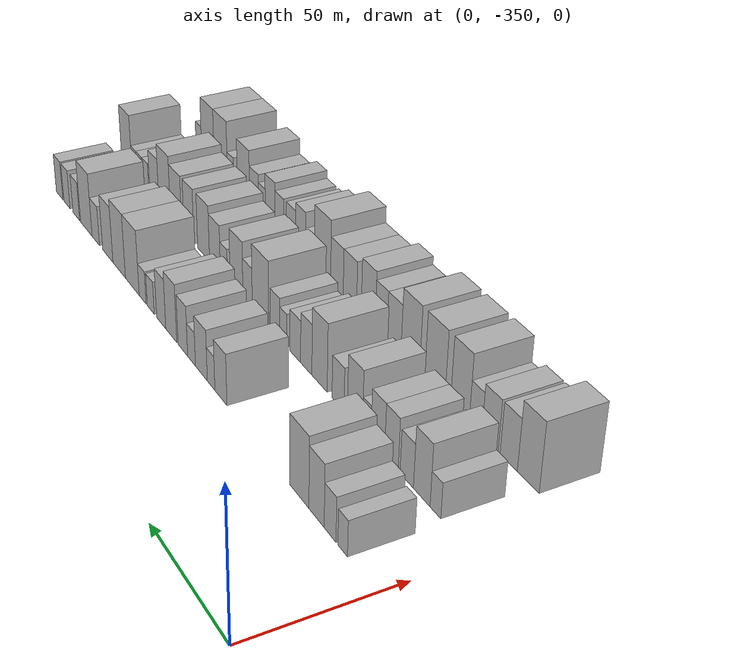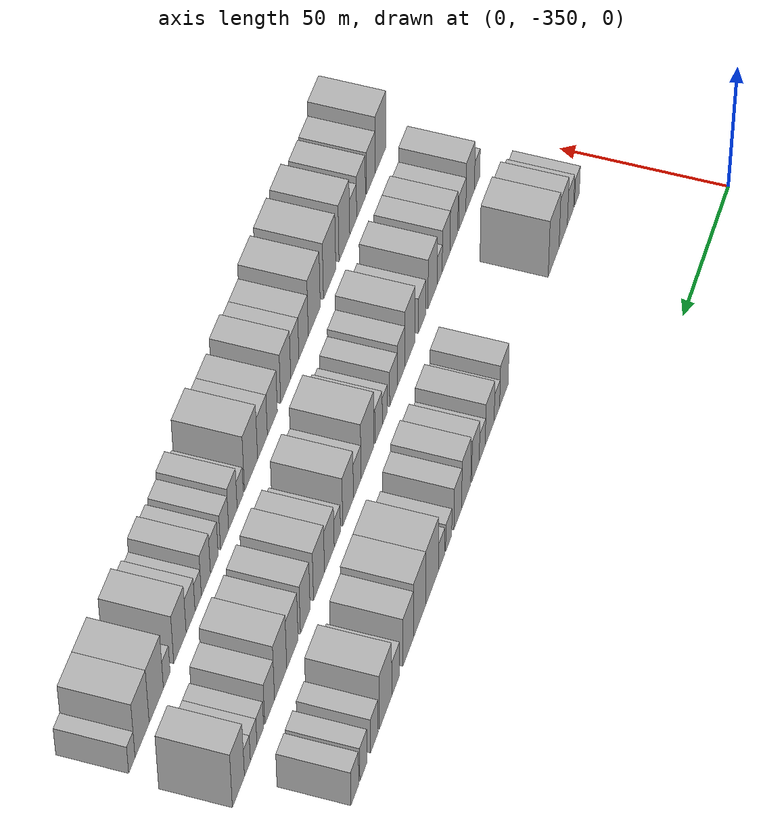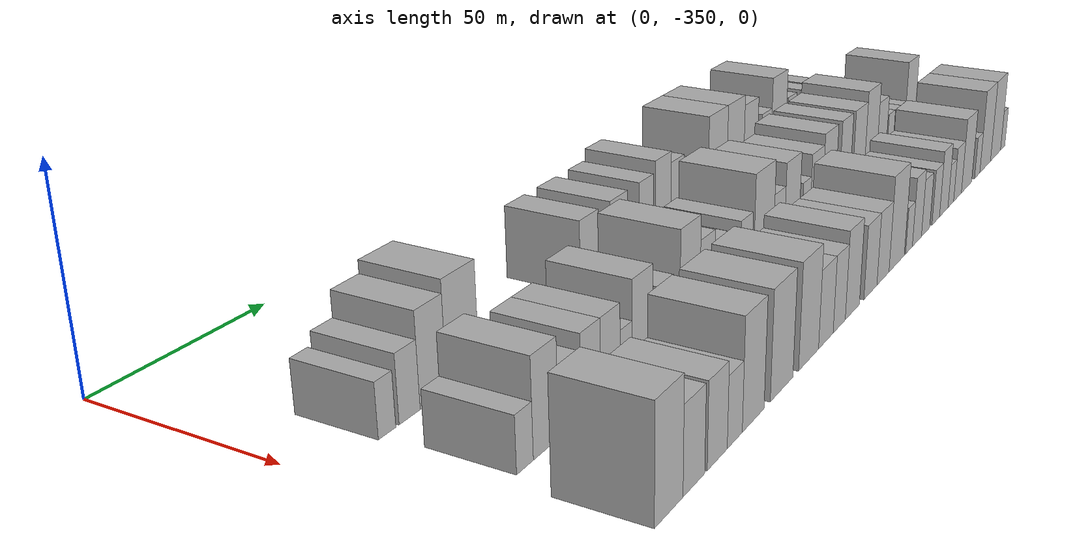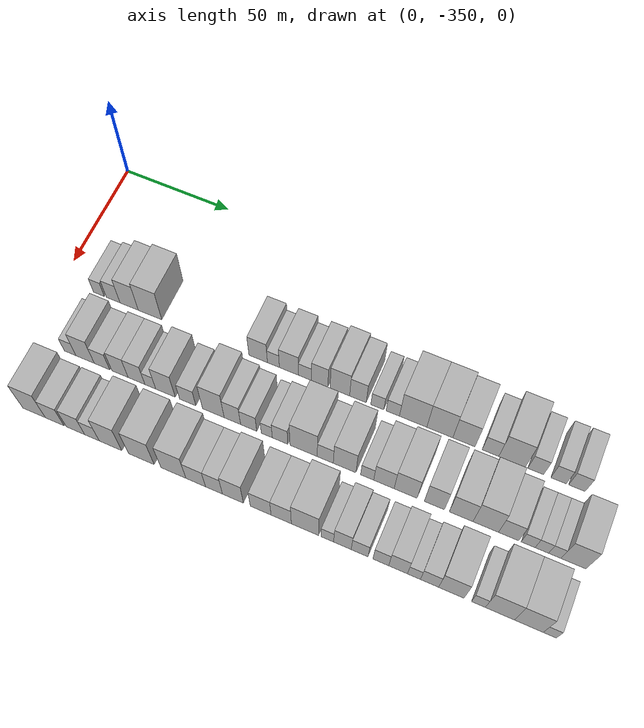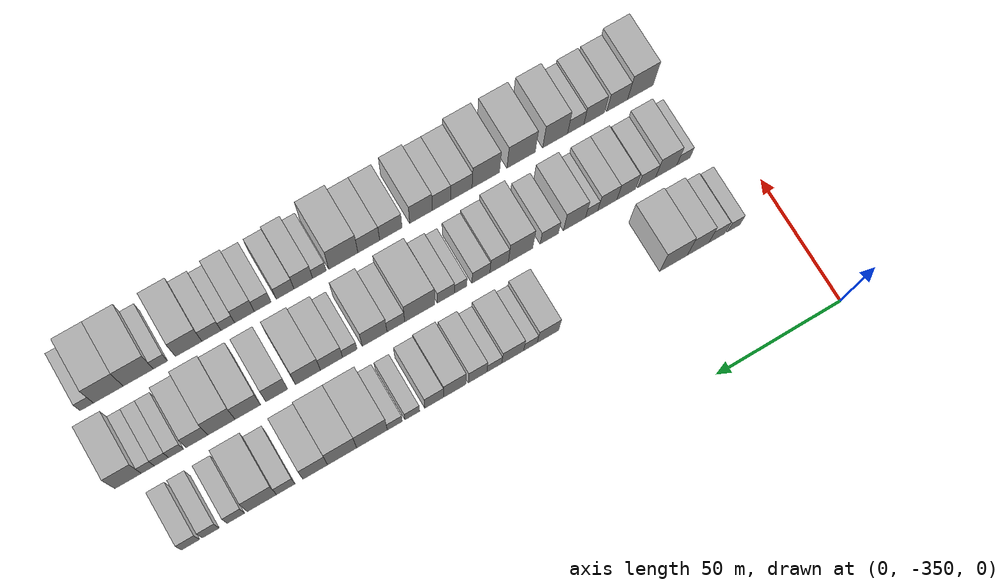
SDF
<sdf version="1.6">
 <world name="default">
  <model name="building_1">
   <static>1</static>
   <pose>50.0000 -332.4038 0 0.000000 0.000000 0.000000</pose>
   <link name="link">
    <pose>0 0 6.00 0 0 0</pose>
    <collision name="collision"><geometry><box><size>20.0000 5.1924 12.0000</size></box></geometry></collision>
    <visual name="visual">
     <cast_shadows>0</cast_shadows>
     <geometry><box><size>20.0000 5.1924 12.0000</size></box></geometry>
     <material>
      <script>
       <uri>model://HANNAS_wall/materials/scripts</uri>
       <uri>model://HANNAS_wall/materials/textures</uri>
       <name>vrc/HANNAS_wall</name>
      </script>
     </material>
    </visual>
   </link>
  </model>
  <model name="building_2">
   <static>1</static>
   <pose>50.0000 -325.5463 0 0.000000 0.000000 0.000000</pose>
   <link name="link">
    <pose>0 0 7.50 0 0 0</pose>
    <collision name="collision"><geometry><box><size>20.0000 6.5226 15.0000</size></box></geometry></collision>
    <visual name="visual">
     <cast_shadows>0</cast_shadows>
     <geometry><box><size>20.0000 6.5226 15.0000</size></box></geometry>
     <material>
      <script>
       <uri>model://HANNAS_wall/materials/scripts</uri>
       <uri>model://HANNAS_wall/materials/textures</uri>
       <name>vrc/HANNAS_wall</name>
      </script>
     </material>
    </visual>
   </link>
  </model>
  <model name="building_3">
   <static>1</static>
   <pose>50.0000 -317.9399 0 0.000000 0.000000 0.000000</pose>
   <link name="link">
    <pose>0 0 10.50 0 0 0</pose>
    <collision name="collision"><geometry><box><size>20.0000 8.6902 21.0000</size></box></geometry></collision>
    <visual name="visual">
     <cast_shadows>0</cast_shadows>
     <geometry><box><size>20.0000 8.6902 21.0000</size></box></geometry>
     <material>
      <script>
       <uri>model://HANNAS_wall/materials/scripts</uri>
       <uri>model://HANNAS_wall/materials/textures</uri>
       <name>vrc/HANNAS_wall</name>
      </script>
     </material>
    </visual>
   </link>
  </model>
  <model name="building_4">
   <static>1</static>
   <pose>50.0000 -308.0300 0 0.000000 0.000000 0.000000</pose>
   <link name="link">
    <pose>0 0 12.00 0 0 0</pose>
    <collision name="collision"><geometry><box><size>20.0000 11.1295 24.0000</size></box></geometry></collision>
    <visual name="visual">
     <cast_shadows>0</cast_shadows>
     <geometry><box><size>20.0000 11.1295 24.0000</size></box></geometry>
     <material>
      <script>
       <uri>model://HANNAS_wall/materials/scripts</uri>
       <uri>model://HANNAS_wall/materials/textures</uri>
       <name>vrc/HANNAS_wall</name>
      </script>
     </material>
    </visual>
   </link>
  </model>
  <model name="building_5">
   <static>1</static>
   <pose>50.0000 -257.8052 0 0.000000 0.000000 0.000000</pose>
   <link name="link">
    <pose>0 0 9.00 0 0 0</pose>
    <collision name="collision"><geometry><box><size>20.0000 8.4401 18.0000</size></box></geometry></collision>
    <visual name="visual">
     <cast_shadows>0</cast_shadows>
     <geometry><box><size>20.0000 8.4401 18.0000</size></box></geometry>
     <material>
      <script>
       <uri>model://HANNAS_wall/materials/scripts</uri>
       <uri>model://HANNAS_wall/materials/textures</uri>
       <name>vrc/HANNAS_wall</name>
      </script>
     </material>
    </visual>
   </link>
  </model>
  <model name="building_6">
   <static>1</static>
   <pose>50.0000 -250.8896 0 0.000000 0.000000 0.000000</pose>
   <link name="link">
    <pose>0 0 6.00 0 0 0</pose>
    <collision name="collision"><geometry><box><size>20.0000 5.3911 12.0000</size></box></geometry></collision>
    <visual name="visual">
     <cast_shadows>0</cast_shadows>
     <geometry><box><size>20.0000 5.3911 12.0000</size></box></geometry>
     <material>
      <script>
       <uri>model://HANNAS_wall/materials/scripts</uri>
       <uri>model://HANNAS_wall/materials/textures</uri>
       <name>vrc/HANNAS_wall</name>
      </script>
     </material>
    </visual>
   </link>
  </model>
  <model name="building_7">
   <static>1</static>
   <pose>50.0000 -243.8763 0 0.000000 0.000000 0.000000</pose>
   <link name="link">
    <pose>0 0 9.00 0 0 0</pose>
    <collision name="collision"><geometry><box><size>20.0000 8.6356 18.0000</size></box></geometry></collision>
    <visual name="visual">
     <cast_shadows>0</cast_shadows>
     <geometry><box><size>20.0000 8.6356 18.0000</size></box></geometry>
     <material>
      <script>
       <uri>model://HANNAS_wall/materials/scripts</uri>
       <uri>model://HANNAS_wall/materials/textures</uri>
       <name>vrc/HANNAS_wall</name>
      </script>
     </material>
    </visual>
   </link>
  </model>
  <model name="building_8">
   <static>1</static>
   <pose>50.0000 -236.6491 0 0.000000 0.000000 0.000000</pose>
   <link name="link">
    <pose>0 0 6.00 0 0 0</pose>
    <collision name="collision"><geometry><box><size>20.0000 5.8187 12.0000</size></box></geometry></collision>
    <visual name="visual">
     <cast_shadows>0</cast_shadows>
     <geometry><box><size>20.0000 5.8187 12.0000</size></box></geometry>
     <material>
      <script>
       <uri>model://HANNAS_wall/materials/scripts</uri>
       <uri>model://HANNAS_wall/materials/textures</uri>
       <name>vrc/HANNAS_wall</name>
      </script>
     </material>
    </visual>
   </link>
  </model>
  <model name="building_9">
   <static>1</static>
   <pose>50.0000 -230.1045 0 0.000000 0.000000 0.000000</pose>
   <link name="link">
    <pose>0 0 9.00 0 0 0</pose>
    <collision name="collision"><geometry><box><size>20.0000 7.2705 18.0000</size></box></geometry></collision>
    <visual name="visual">
     <cast_shadows>0</cast_shadows>
     <geometry><box><size>20.0000 7.2705 18.0000</size></box></geometry>
     <material>
      <script>
       <uri>model://HANNAS_wall/materials/scripts</uri>
       <uri>model://HANNAS_wall/materials/textures</uri>
       <name>vrc/HANNAS_wall</name>
      </script>
     </material>
    </visual>
   </link>
  </model>
  <model name="building_10">
   <static>1</static>
   <pose>50.0000 -221.1485 0 0.000000 0.000000 0.000000</pose>
   <link name="link">
    <pose>0 0 10.50 0 0 0</pose>
    <collision name="collision"><geometry><box><size>20.0000 8.6415 21.0000</size></box></geometry></collision>
    <visual name="visual">
     <cast_shadows>0</cast_shadows>
     <geometry><box><size>20.0000 8.6415 21.0000</size></box></geometry>
     <material>
      <script>
       <uri>model://HANNAS_wall/materials/scripts</uri>
       <uri>model://HANNAS_wall/materials/textures</uri>
       <name>vrc/HANNAS_wall</name>
      </script>
     </material>
    </visual>
   </link>
  </model>
  <model name="building_11">
   <static>1</static>
   <pose>50.0000 -213.1684 0 0.000000 0.000000 0.000000</pose>
   <link name="link">
    <pose>0 0 9.00 0 0 0</pose>
    <collision name="collision"><geometry><box><size>20.0000 7.3188 18.0000</size></box></geometry></collision>
    <visual name="visual">
     <cast_shadows>0</cast_shadows>
     <geometry><box><size>20.0000 7.3188 18.0000</size></box></geometry>
     <material>
      <script>
       <uri>model://HANNAS_wall/materials/scripts</uri>
       <uri>model://HANNAS_wall/materials/textures</uri>
       <name>vrc/HANNAS_wall</name>
      </script>
     </material>
    </visual>
   </link>
  </model>
  <model name="building_12">
   <static>1</static>
   <pose>50.0000 -204.6580 0 0.000000 0.000000 0.000000</pose>
   <link name="link">
    <pose>0 0 6.00 0 0 0</pose>
    <collision name="collision"><geometry><box><size>20.0000 5.7020 12.0000</size></box></geometry></collision>
    <visual name="visual">
     <cast_shadows>0</cast_shadows>
     <geometry><box><size>20.0000 5.7020 12.0000</size></box></geometry>
     <material>
      <script>
       <uri>model://HANNAS_wall/materials/scripts</uri>
       <uri>model://HANNAS_wall/materials/textures</uri>
       <name>vrc/HANNAS_wall</name>
      </script>
     </material>
    </visual>
   </link>
  </model>
  <model name="building_13">
   <static>1</static>
   <pose>50.0000 -197.9033 0 0.000000 0.000000 0.000000</pose>
   <link name="link">
    <pose>0 0 6.00 0 0 0</pose>
    <collision name="collision"><geometry><box><size>20.0000 5.8075 12.0000</size></box></geometry></collision>
    <visual name="visual">
     <cast_shadows>0</cast_shadows>
     <geometry><box><size>20.0000 5.8075 12.0000</size></box></geometry>
     <material>
      <script>
       <uri>model://HANNAS_wall/materials/scripts</uri>
       <uri>model://HANNAS_wall/materials/textures</uri>
       <name>vrc/HANNAS_wall</name>
      </script>
     </material>
    </visual>
   </link>
  </model>
  <model name="building_14">
   <static>1</static>
   <pose>50.0000 -189.0731 0 0.000000 0.000000 0.000000</pose>
   <link name="link">
    <pose>0 0 12.00 0 0 0</pose>
    <collision name="collision"><geometry><box><size>20.0000 11.8528 24.0000</size></box></geometry></collision>
    <visual name="visual">
     <cast_shadows>0</cast_shadows>
     <geometry><box><size>20.0000 11.8528 24.0000</size></box></geometry>
     <material>
      <script>
       <uri>model://HANNAS_wall/materials/scripts</uri>
       <uri>model://HANNAS_wall/materials/textures</uri>
       <name>vrc/HANNAS_wall</name>
      </script>
     </material>
    </visual>
   </link>
  </model>
  <model name="building_15">
   <static>1</static>
   <pose>50.0000 -177.5735 0 0.000000 0.000000 0.000000</pose>
   <link name="link">
    <pose>0 0 12.00 0 0 0</pose>
    <collision name="collision"><geometry><box><size>20.0000 11.1463 24.0000</size></box></geometry></collision>
    <visual name="visual">
     <cast_shadows>0</cast_shadows>
     <geometry><box><size>20.0000 11.1463 24.0000</size></box></geometry>
     <material>
      <script>
       <uri>model://HANNAS_wall/materials/scripts</uri>
       <uri>model://HANNAS_wall/materials/textures</uri>
       <name>vrc/HANNAS_wall</name>
      </script>
     </material>
    </visual>
   </link>
  </model>
  <model name="building_16">
   <static>1</static>
   <pose>50.0000 -167.2819 0 0.000000 0.000000 0.000000</pose>
   <link name="link">
    <pose>0 0 10.50 0 0 0</pose>
    <collision name="collision"><geometry><box><size>20.0000 9.4371 21.0000</size></box></geometry></collision>
    <visual name="visual">
     <cast_shadows>0</cast_shadows>
     <geometry><box><size>20.0000 9.4371 21.0000</size></box></geometry>
     <material>
      <script>
       <uri>model://HANNAS_wall/materials/scripts</uri>
       <uri>model://HANNAS_wall/materials/textures</uri>
       <name>vrc/HANNAS_wall</name>
      </script>
     </material>
    </visual>
   </link>
  </model>
  <model name="building_17">
   <static>1</static>
   <pose>50.0000 -156.0513 0 0.000000 0.000000 0.000000</pose>
   <link name="link">
    <pose>0 0 7.50 0 0 0</pose>
    <collision name="collision"><geometry><box><size>20.0000 7.0241 15.0000</size></box></geometry></collision>
    <visual name="visual">
     <cast_shadows>0</cast_shadows>
     <geometry><box><size>20.0000 7.0241 15.0000</size></box></geometry>
     <material>
      <script>
       <uri>model://HANNAS_wall/materials/scripts</uri>
       <uri>model://HANNAS_wall/materials/textures</uri>
       <name>vrc/HANNAS_wall</name>
      </script>
     </material>
    </visual>
   </link>
  </model>
  <model name="building_18">
   <static>1</static>
   <pose>50.0000 -146.9689 0 0.000000 0.000000 0.000000</pose>
   <link name="link">
    <pose>0 0 12.00 0 0 0</pose>
    <collision name="collision"><geometry><box><size>20.0000 11.1406 24.0000</size></box></geometry></collision>
    <visual name="visual">
     <cast_shadows>0</cast_shadows>
     <geometry><box><size>20.0000 11.1406 24.0000</size></box></geometry>
     <material>
      <script>
       <uri>model://HANNAS_wall/materials/scripts</uri>
       <uri>model://HANNAS_wall/materials/textures</uri>
       <name>vrc/HANNAS_wall</name>
      </script>
     </material>
    </visual>
   </link>
  </model>
  <model name="building_19">
   <static>1</static>
   <pose>50.0000 -137.1021 0 0.000000 0.000000 0.000000</pose>
   <link name="link">
    <pose>0 0 7.50 0 0 0</pose>
    <collision name="collision"><geometry><box><size>20.0000 6.5930 15.0000</size></box></geometry></collision>
    <visual name="visual">
     <cast_shadows>0</cast_shadows>
     <geometry><box><size>20.0000 6.5930 15.0000</size></box></geometry>
     <material>
      <script>
       <uri>model://HANNAS_wall/materials/scripts</uri>
       <uri>model://HANNAS_wall/materials/textures</uri>
       <name>vrc/HANNAS_wall</name>
      </script>
     </material>
    </visual>
   </link>
  </model>
  <model name="building_20">
   <static>1</static>
   <pose>50.0000 -127.6321 0 0.000000 0.000000 0.000000</pose>
   <link name="link">
    <pose>0 0 7.50 0 0 0</pose>
    <collision name="collision"><geometry><box><size>20.0000 6.3470 15.0000</size></box></geometry></collision>
    <visual name="visual">
     <cast_shadows>0</cast_shadows>
     <geometry><box><size>20.0000 6.3470 15.0000</size></box></geometry>
     <material>
      <script>
       <uri>model://HANNAS_wall/materials/scripts</uri>
       <uri>model://HANNAS_wall/materials/textures</uri>
       <name>vrc/HANNAS_wall</name>
      </script>
     </material>
    </visual>
   </link>
  </model>
  <model name="building_21">
   <static>1</static>
   <pose>50.0000 -120.0750 0 0.000000 0.000000 0.000000</pose>
   <link name="link">
    <pose>0 0 7.50 0 0 0</pose>
    <collision name="collision"><geometry><box><size>20.0000 6.7672 15.0000</size></box></geometry></collision>
    <visual name="visual">
     <cast_shadows>0</cast_shadows>
     <geometry><box><size>20.0000 6.7672 15.0000</size></box></geometry>
     <material>
      <script>
       <uri>model://HANNAS_wall/materials/scripts</uri>
       <uri>model://HANNAS_wall/materials/textures</uri>
       <name>vrc/HANNAS_wall</name>
      </script>
     </material>
    </visual>
   </link>
  </model>
  <model name="building_72">
   <static>1</static>
   <pose>79.0000 -330.2549 0 0.000000 0.000000 0.000000</pose>
   <link name="link">
    <pose>0 0 6.00 0 0 0</pose>
    <collision name="collision"><geometry><box><size>20.0000 5.4902 12.0000</size></box></geometry></collision>
    <visual name="visual">
     <cast_shadows>0</cast_shadows>
     <geometry><box><size>20.0000 5.4902 12.0000</size></box></geometry>
     <material>
      <script>
       <uri>model://HANNAS_wall/materials/scripts</uri>
       <uri>model://HANNAS_wall/materials/textures</uri>
       <name>vrc/HANNAS_wall</name>
      </script>
     </material>
    </visual>
   </link>
  </model>
  <model name="building_73">
   <static>1</static>
   <pose>79.0000 -323.1940 0 0.000000 0.000000 0.000000</pose>
   <link name="link">
    <pose>0 0 10.50 0 0 0</pose>
    <collision name="collision"><geometry><box><size>20.0000 8.6316 21.0000</size></box></geometry></collision>
    <visual name="visual">
     <cast_shadows>0</cast_shadows>
     <geometry><box><size>20.0000 8.6316 21.0000</size></box></geometry>
     <material>
      <script>
       <uri>model://HANNAS_wall/materials/scripts</uri>
       <uri>model://HANNAS_wall/materials/textures</uri>
       <name>vrc/HANNAS_wall</name>
      </script>
     </material>
    </visual>
   </link>
  </model>
  <model name="building_74">
   <static>1</static>
   <pose>79.0000 -315.2880 0 0.000000 0.000000 0.000000</pose>
   <link name="link">
    <pose>0 0 7.50 0 0 0</pose>
    <collision name="collision"><geometry><box><size>20.0000 7.1804 15.0000</size></box></geometry></collision>
    <visual name="visual">
     <cast_shadows>0</cast_shadows>
     <geometry><box><size>20.0000 7.1804 15.0000</size></box></geometry>
     <material>
      <script>
       <uri>model://HANNAS_wall/materials/scripts</uri>
       <uri>model://HANNAS_wall/materials/textures</uri>
       <name>vrc/HANNAS_wall</name>
      </script>
     </material>
    </visual>
   </link>
  </model>
  <model name="building_75">
   <static>1</static>
   <pose>79.0000 -306.9317 0 0.000000 0.000000 0.000000</pose>
   <link name="link">
    <pose>0 0 9.00 0 0 0</pose>
    <collision name="collision"><geometry><box><size>20.0000 7.5321 18.0000</size></box></geometry></collision>
    <visual name="visual">
     <cast_shadows>0</cast_shadows>
     <geometry><box><size>20.0000 7.5321 18.0000</size></box></geometry>
     <material>
      <script>
       <uri>model://HANNAS_wall/materials/scripts</uri>
       <uri>model://HANNAS_wall/materials/textures</uri>
       <name>vrc/HANNAS_wall</name>
      </script>
     </material>
    </visual>
   </link>
  </model>
  <model name="building_76">
   <static>1</static>
   <pose>79.0000 -299.2934 0 0.000000 0.000000 0.000000</pose>
   <link name="link">
    <pose>0 0 9.00 0 0 0</pose>
    <collision name="collision"><geometry><box><size>20.0000 7.7446 18.0000</size></box></geometry></collision>
    <visual name="visual">
     <cast_shadows>0</cast_shadows>
     <geometry><box><size>20.0000 7.7446 18.0000</size></box></geometry>
     <material>
      <script>
       <uri>model://HANNAS_wall/materials/scripts</uri>
       <uri>model://HANNAS_wall/materials/textures</uri>
       <name>vrc/HANNAS_wall</name>
      </script>
     </material>
    </visual>
   </link>
  </model>
  <model name="building_77">
   <static>1</static>
   <pose>79.0000 -292.9401 0 0.000000 0.000000 0.000000</pose>
   <link name="link">
    <pose>0 0 6.00 0 0 0</pose>
    <collision name="collision"><geometry><box><size>20.0000 4.9619 12.0000</size></box></geometry></collision>
    <visual name="visual">
     <cast_shadows>0</cast_shadows>
     <geometry><box><size>20.0000 4.9619 12.0000</size></box></geometry>
     <material>
      <script>
       <uri>model://HANNAS_wall/materials/scripts</uri>
       <uri>model://HANNAS_wall/materials/textures</uri>
       <name>vrc/HANNAS_wall</name>
      </script>
     </material>
    </visual>
   </link>
  </model>
  <model name="building_78">
   <static>1</static>
   <pose>79.0000 -286.0191 0 0.000000 0.000000 0.000000</pose>
   <link name="link">
    <pose>0 0 10.50 0 0 0</pose>
    <collision name="collision"><geometry><box><size>20.0000 8.8802 21.0000</size></box></geometry></collision>
    <visual name="visual">
     <cast_shadows>0</cast_shadows>
     <geometry><box><size>20.0000 8.8802 21.0000</size></box></geometry>
     <material>
      <script>
       <uri>model://HANNAS_wall/materials/scripts</uri>
       <uri>model://HANNAS_wall/materials/textures</uri>
       <name>vrc/HANNAS_wall</name>
      </script>
     </material>
    </visual>
   </link>
  </model>
  <model name="building_79">
   <static>1</static>
   <pose>79.0000 -275.9144 0 0.000000 0.000000 0.000000</pose>
   <link name="link">
    <pose>0 0 7.50 0 0 0</pose>
    <collision name="collision"><geometry><box><size>20.0000 7.3290 15.0000</size></box></geometry></collision>
    <visual name="visual">
     <cast_shadows>0</cast_shadows>
     <geometry><box><size>20.0000 7.3290 15.0000</size></box></geometry>
     <material>
      <script>
       <uri>model://HANNAS_wall/materials/scripts</uri>
       <uri>model://HANNAS_wall/materials/textures</uri>
       <name>vrc/HANNAS_wall</name>
      </script>
     </material>
    </visual>
   </link>
  </model>
  <model name="building_80">
   <static>1</static>
   <pose>79.0000 -264.3864 0 0.000000 0.000000 0.000000</pose>
   <link name="link">
    <pose>0 0 12.00 0 0 0</pose>
    <collision name="collision"><geometry><box><size>20.0000 9.7270 24.0000</size></box></geometry></collision>
    <visual name="visual">
     <cast_shadows>0</cast_shadows>
     <geometry><box><size>20.0000 9.7270 24.0000</size></box></geometry>
     <material>
      <script>
       <uri>model://HANNAS_wall/materials/scripts</uri>
       <uri>model://HANNAS_wall/materials/textures</uri>
       <name>vrc/HANNAS_wall</name>
      </script>
     </material>
    </visual>
   </link>
  </model>
  <model name="building_81">
   <static>1</static>
   <pose>79.0000 -255.8550 0 0.000000 0.000000 0.000000</pose>
   <link name="link">
    <pose>0 0 9.00 0 0 0</pose>
    <collision name="collision"><geometry><box><size>20.0000 7.3358 18.0000</size></box></geometry></collision>
    <visual name="visual">
     <cast_shadows>0</cast_shadows>
     <geometry><box><size>20.0000 7.3358 18.0000</size></box></geometry>
     <material>
      <script>
       <uri>model://HANNAS_wall/materials/scripts</uri>
       <uri>model://HANNAS_wall/materials/textures</uri>
       <name>vrc/HANNAS_wall</name>
      </script>
     </material>
    </visual>
   </link>
  </model>
  <model name="building_82">
   <static>1</static>
   <pose>79.0000 -248.6171 0 0.000000 0.000000 0.000000</pose>
   <link name="link">
    <pose>0 0 7.50 0 0 0</pose>
    <collision name="collision"><geometry><box><size>20.0000 7.1400 15.0000</size></box></geometry></collision>
    <visual name="visual">
     <cast_shadows>0</cast_shadows>
     <geometry><box><size>20.0000 7.1400 15.0000</size></box></geometry>
     <material>
      <script>
       <uri>model://HANNAS_wall/materials/scripts</uri>
       <uri>model://HANNAS_wall/materials/textures</uri>
       <name>vrc/HANNAS_wall</name>
      </script>
     </material>
    </visual>
   </link>
  </model>
  <model name="building_83">
   <static>1</static>
   <pose>79.0000 -240.6178 0 0.000000 0.000000 0.000000</pose>
   <link name="link">
    <pose>0 0 6.00 0 0 0</pose>
    <collision name="collision"><geometry><box><size>20.0000 4.8586 12.0000</size></box></geometry></collision>
    <visual name="visual">
     <cast_shadows>0</cast_shadows>
     <geometry><box><size>20.0000 4.8586 12.0000</size></box></geometry>
     <material>
      <script>
       <uri>model://HANNAS_wall/materials/scripts</uri>
       <uri>model://HANNAS_wall/materials/textures</uri>
       <name>vrc/HANNAS_wall</name>
      </script>
     </material>
    </visual>
   </link>
  </model>
  <model name="building_84">
   <static>1</static>
   <pose>79.0000 -234.8012 0 0.000000 0.000000 0.000000</pose>
   <link name="link">
    <pose>0 0 7.50 0 0 0</pose>
    <collision name="collision"><geometry><box><size>20.0000 6.7746 15.0000</size></box></geometry></collision>
    <visual name="visual">
     <cast_shadows>0</cast_shadows>
     <geometry><box><size>20.0000 6.7746 15.0000</size></box></geometry>
     <material>
      <script>
       <uri>model://HANNAS_wall/materials/scripts</uri>
       <uri>model://HANNAS_wall/materials/textures</uri>
       <name>vrc/HANNAS_wall</name>
      </script>
     </material>
    </visual>
   </link>
  </model>
  <model name="building_85">
   <static>1</static>
   <pose>79.0000 -224.5060 0 0.000000 0.000000 0.000000</pose>
   <link name="link">
    <pose>0 0 12.00 0 0 0</pose>
    <collision name="collision"><geometry><box><size>20.0000 11.8158 24.0000</size></box></geometry></collision>
    <visual name="visual">
     <cast_shadows>0</cast_shadows>
     <geometry><box><size>20.0000 11.8158 24.0000</size></box></geometry>
     <material>
      <script>
       <uri>model://HANNAS_wall/materials/scripts</uri>
       <uri>model://HANNAS_wall/materials/textures</uri>
       <name>vrc/HANNAS_wall</name>
      </script>
     </material>
    </visual>
   </link>
  </model>
  <model name="building_86">
   <static>1</static>
   <pose>79.0000 -215.1308 0 0.000000 0.000000 0.000000</pose>
   <link name="link">
    <pose>0 0 7.50 0 0 0</pose>
    <collision name="collision"><geometry><box><size>20.0000 6.9346 15.0000</size></box></geometry></collision>
    <visual name="visual">
     <cast_shadows>0</cast_shadows>
     <geometry><box><size>20.0000 6.9346 15.0000</size></box></geometry>
     <material>
      <script>
       <uri>model://HANNAS_wall/materials/scripts</uri>
       <uri>model://HANNAS_wall/materials/textures</uri>
       <name>vrc/HANNAS_wall</name>
      </script>
     </material>
    </visual>
   </link>
  </model>
  <model name="building_87">
   <static>1</static>
   <pose>79.0000 -206.8051 0 0.000000 0.000000 0.000000</pose>
   <link name="link">
    <pose>0 0 10.50 0 0 0</pose>
    <collision name="collision"><geometry><box><size>20.0000 9.7169 21.0000</size></box></geometry></collision>
    <visual name="visual">
     <cast_shadows>0</cast_shadows>
     <geometry><box><size>20.0000 9.7169 21.0000</size></box></geometry>
     <material>
      <script>
       <uri>model://HANNAS_wall/materials/scripts</uri>
       <uri>model://HANNAS_wall/materials/textures</uri>
       <name>vrc/HANNAS_wall</name>
      </script>
     </material>
    </visual>
   </link>
  </model>
  <model name="building_88">
   <static>1</static>
   <pose>79.0000 -197.1469 0 0.000000 0.000000 0.000000</pose>
   <link name="link">
    <pose>0 0 6.00 0 0 0</pose>
    <collision name="collision"><geometry><box><size>20.0000 5.5995 12.0000</size></box></geometry></collision>
    <visual name="visual">
     <cast_shadows>0</cast_shadows>
     <geometry><box><size>20.0000 5.5995 12.0000</size></box></geometry>
     <material>
      <script>
       <uri>model://HANNAS_wall/materials/scripts</uri>
       <uri>model://HANNAS_wall/materials/textures</uri>
       <name>vrc/HANNAS_wall</name>
      </script>
     </material>
    </visual>
   </link>
  </model>
  <model name="building_89">
   <static>1</static>
   <pose>79.0000 -190.0319 0 0.000000 0.000000 0.000000</pose>
   <link name="link">
    <pose>0 0 9.00 0 0 0</pose>
    <collision name="collision"><geometry><box><size>20.0000 8.6304 18.0000</size></box></geometry></collision>
    <visual name="visual">
     <cast_shadows>0</cast_shadows>
     <geometry><box><size>20.0000 8.6304 18.0000</size></box></geometry>
     <material>
      <script>
       <uri>model://HANNAS_wall/materials/scripts</uri>
       <uri>model://HANNAS_wall/materials/textures</uri>
       <name>vrc/HANNAS_wall</name>
      </script>
     </material>
    </visual>
   </link>
  </model>
  <model name="building_90">
   <static>1</static>
   <pose>79.0000 -180.8761 0 0.000000 0.000000 0.000000</pose>
   <link name="link">
    <pose>0 0 10.50 0 0 0</pose>
    <collision name="collision"><geometry><box><size>20.0000 9.6813 21.0000</size></box></geometry></collision>
    <visual name="visual">
     <cast_shadows>0</cast_shadows>
     <geometry><box><size>20.0000 9.6813 21.0000</size></box></geometry>
     <material>
      <script>
       <uri>model://HANNAS_wall/materials/scripts</uri>
       <uri>model://HANNAS_wall/materials/textures</uri>
       <name>vrc/HANNAS_wall</name>
      </script>
     </material>
    </visual>
   </link>
  </model>
  <model name="building_91">
   <static>1</static>
   <pose>79.0000 -168.8287 0 0.000000 0.000000 0.000000</pose>
   <link name="link">
    <pose>0 0 10.50 0 0 0</pose>
    <collision name="collision"><geometry><box><size>20.0000 8.4134 21.0000</size></box></geometry></collision>
    <visual name="visual">
     <cast_shadows>0</cast_shadows>
     <geometry><box><size>20.0000 8.4134 21.0000</size></box></geometry>
     <material>
      <script>
       <uri>model://HANNAS_wall/materials/scripts</uri>
       <uri>model://HANNAS_wall/materials/textures</uri>
       <name>vrc/HANNAS_wall</name>
      </script>
     </material>
    </visual>
   </link>
  </model>
  <model name="building_92">
   <static>1</static>
   <pose>79.0000 -157.7375 0 0.000000 0.000000 0.000000</pose>
   <link name="link">
    <pose>0 0 10.50 0 0 0</pose>
    <collision name="collision"><geometry><box><size>20.0000 9.7690 21.0000</size></box></geometry></collision>
    <visual name="visual">
     <cast_shadows>0</cast_shadows>
     <geometry><box><size>20.0000 9.7690 21.0000</size></box></geometry>
     <material>
      <script>
       <uri>model://HANNAS_wall/materials/scripts</uri>
       <uri>model://HANNAS_wall/materials/textures</uri>
       <name>vrc/HANNAS_wall</name>
      </script>
     </material>
    </visual>
   </link>
  </model>
  <model name="building_93">
   <static>1</static>
   <pose>79.0000 -147.6204 0 0.000000 0.000000 0.000000</pose>
   <link name="link">
    <pose>0 0 12.00 0 0 0</pose>
    <collision name="collision"><geometry><box><size>20.0000 10.4653 24.0000</size></box></geometry></collision>
    <visual name="visual">
     <cast_shadows>0</cast_shadows>
     <geometry><box><size>20.0000 10.4653 24.0000</size></box></geometry>
     <material>
      <script>
       <uri>model://HANNAS_wall/materials/scripts</uri>
       <uri>model://HANNAS_wall/materials/textures</uri>
       <name>vrc/HANNAS_wall</name>
      </script>
     </material>
    </visual>
   </link>
  </model>
  <model name="building_94">
   <static>1</static>
   <pose>79.0000 -138.2699 0 0.000000 0.000000 0.000000</pose>
   <link name="link">
    <pose>0 0 9.00 0 0 0</pose>
    <collision name="collision"><geometry><box><size>20.0000 8.2356 18.0000</size></box></geometry></collision>
    <visual name="visual">
     <cast_shadows>0</cast_shadows>
     <geometry><box><size>20.0000 8.2356 18.0000</size></box></geometry>
     <material>
      <script>
       <uri>model://HANNAS_wall/materials/scripts</uri>
       <uri>model://HANNAS_wall/materials/textures</uri>
       <name>vrc/HANNAS_wall</name>
      </script>
     </material>
    </visual>
   </link>
  </model>
  <model name="building_95">
   <static>1</static>
   <pose>79.0000 -130.3383 0 0.000000 0.000000 0.000000</pose>
   <link name="link">
    <pose>0 0 6.00 0 0 0</pose>
    <collision name="collision"><geometry><box><size>20.0000 5.6278 12.0000</size></box></geometry></collision>
    <visual name="visual">
     <cast_shadows>0</cast_shadows>
     <geometry><box><size>20.0000 5.6278 12.0000</size></box></geometry>
     <material>
      <script>
       <uri>model://HANNAS_wall/materials/scripts</uri>
       <uri>model://HANNAS_wall/materials/textures</uri>
       <name>vrc/HANNAS_wall</name>
      </script>
     </material>
    </visual>
   </link>
  </model>
  <model name="building_96">
   <static>1</static>
   <pose>79.0000 -124.8079 0 0.000000 0.000000 0.000000</pose>
   <link name="link">
    <pose>0 0 6.00 0 0 0</pose>
    <collision name="collision"><geometry><box><size>20.0000 5.4330 12.0000</size></box></geometry></collision>
    <visual name="visual">
     <cast_shadows>0</cast_shadows>
     <geometry><box><size>20.0000 5.4330 12.0000</size></box></geometry>
     <material>
      <script>
       <uri>model://HANNAS_wall/materials/scripts</uri>
       <uri>model://HANNAS_wall/materials/textures</uri>
       <name>vrc/HANNAS_wall</name>
      </script>
     </material>
    </visual>
   </link>
  </model>
  <model name="building_97">
   <static>1</static>
   <pose>79.0000 -119.6314 0 0.000000 0.000000 0.000000</pose>
   <link name="link">
    <pose>0 0 6.00 0 0 0</pose>
    <collision name="collision"><geometry><box><size>20.0000 4.9200 12.0000</size></box></geometry></collision>
    <visual name="visual">
     <cast_shadows>0</cast_shadows>
     <geometry><box><size>20.0000 4.9200 12.0000</size></box></geometry>
     <material>
      <script>
       <uri>model://HANNAS_wall/materials/scripts</uri>
       <uri>model://HANNAS_wall/materials/textures</uri>
       <name>vrc/HANNAS_wall</name>
      </script>
     </material>
    </visual>
   </link>
  </model>
  <model name="building_98">
   <static>1</static>
   <pose>79.0000 -112.1849 0 0.000000 0.000000 0.000000</pose>
   <link name="link">
    <pose>0 0 12.00 0 0 0</pose>
    <collision name="collision"><geometry><box><size>20.0000 9.9729 24.0000</size></box></geometry></collision>
    <visual name="visual">
     <cast_shadows>0</cast_shadows>
     <geometry><box><size>20.0000 9.9729 24.0000</size></box></geometry>
     <material>
      <script>
       <uri>model://HANNAS_wall/materials/scripts</uri>
       <uri>model://HANNAS_wall/materials/textures</uri>
       <name>vrc/HANNAS_wall</name>
      </script>
     </material>
    </visual>
   </link>
  </model>
  <model name="building_149">
   <static>1</static>
   <pose>108.0000 -330.7446 0 0.000000 0.000000 0.000000</pose>
   <link name="link">
    <pose>0 0 12.00 0 0 0</pose>
    <collision name="collision"><geometry><box><size>20.0000 10.5108 24.0000</size></box></geometry></collision>
    <visual name="visual">
     <cast_shadows>0</cast_shadows>
     <geometry><box><size>20.0000 10.5108 24.0000</size></box></geometry>
     <material>
      <script>
       <uri>model://HANNAS_wall/materials/scripts</uri>
       <uri>model://HANNAS_wall/materials/textures</uri>
       <name>vrc/HANNAS_wall</name>
      </script>
     </material>
    </visual>
   </link>
  </model>
  <model name="building_150">
   <static>1</static>
   <pose>108.0000 -321.2250 0 0.000000 0.000000 0.000000</pose>
   <link name="link">
    <pose>0 0 9.00 0 0 0</pose>
    <collision name="collision"><geometry><box><size>20.0000 8.5284 18.0000</size></box></geometry></collision>
    <visual name="visual">
     <cast_shadows>0</cast_shadows>
     <geometry><box><size>20.0000 8.5284 18.0000</size></box></geometry>
     <material>
      <script>
       <uri>model://HANNAS_wall/materials/scripts</uri>
       <uri>model://HANNAS_wall/materials/textures</uri>
       <name>vrc/HANNAS_wall</name>
      </script>
     </material>
    </visual>
   </link>
  </model>
  <model name="building_151">
   <static>1</static>
   <pose>108.0000 -311.7563 0 0.000000 0.000000 0.000000</pose>
   <link name="link">
    <pose>0 0 9.00 0 0 0</pose>
    <collision name="collision"><geometry><box><size>20.0000 8.4089 18.0000</size></box></geometry></collision>
    <visual name="visual">
     <cast_shadows>0</cast_shadows>
     <geometry><box><size>20.0000 8.4089 18.0000</size></box></geometry>
     <material>
      <script>
       <uri>model://HANNAS_wall/materials/scripts</uri>
       <uri>model://HANNAS_wall/materials/textures</uri>
       <name>vrc/HANNAS_wall</name>
      </script>
     </material>
    </visual>
   </link>
  </model>
  <model name="building_152">
   <static>1</static>
   <pose>108.0000 -304.2435 0 0.000000 0.000000 0.000000</pose>
   <link name="link">
    <pose>0 0 7.50 0 0 0</pose>
    <collision name="collision"><geometry><box><size>20.0000 6.6169 15.0000</size></box></geometry></collision>
    <visual name="visual">
     <cast_shadows>0</cast_shadows>
     <geometry><box><size>20.0000 6.6169 15.0000</size></box></geometry>
     <material>
      <script>
       <uri>model://HANNAS_wall/materials/scripts</uri>
       <uri>model://HANNAS_wall/materials/textures</uri>
       <name>vrc/HANNAS_wall</name>
      </script>
     </material>
    </visual>
   </link>
  </model>
  <model name="building_153">
   <static>1</static>
   <pose>108.0000 -295.8666 0 0.000000 0.000000 0.000000</pose>
   <link name="link">
    <pose>0 0 12.00 0 0 0</pose>
    <collision name="collision"><geometry><box><size>20.0000 10.1368 24.0000</size></box></geometry></collision>
    <visual name="visual">
     <cast_shadows>0</cast_shadows>
     <geometry><box><size>20.0000 10.1368 24.0000</size></box></geometry>
     <material>
      <script>
       <uri>model://HANNAS_wall/materials/scripts</uri>
       <uri>model://HANNAS_wall/materials/textures</uri>
       <name>vrc/HANNAS_wall</name>
      </script>
     </material>
    </visual>
   </link>
  </model>
  <model name="building_154">
   <static>1</static>
   <pose>108.0000 -282.0680 0 0.000000 0.000000 0.000000</pose>
   <link name="link">
    <pose>0 0 12.00 0 0 0</pose>
    <collision name="collision"><geometry><box><size>20.0000 11.4604 24.0000</size></box></geometry></collision>
    <visual name="visual">
     <cast_shadows>0</cast_shadows>
     <geometry><box><size>20.0000 11.4604 24.0000</size></box></geometry>
     <material>
      <script>
       <uri>model://HANNAS_wall/materials/scripts</uri>
       <uri>model://HANNAS_wall/materials/textures</uri>
       <name>vrc/HANNAS_wall</name>
      </script>
     </material>
    </visual>
   </link>
  </model>
  <model name="building_155">
   <static>1</static>
   <pose>108.0000 -267.8247 0 0.000000 0.000000 0.000000</pose>
   <link name="link">
    <pose>0 0 12.00 0 0 0</pose>
    <collision name="collision"><geometry><box><size>20.0000 11.0262 24.0000</size></box></geometry></collision>
    <visual name="visual">
     <cast_shadows>0</cast_shadows>
     <geometry><box><size>20.0000 11.0262 24.0000</size></box></geometry>
     <material>
      <script>
       <uri>model://HANNAS_wall/materials/scripts</uri>
       <uri>model://HANNAS_wall/materials/textures</uri>
       <name>vrc/HANNAS_wall</name>
      </script>
     </material>
    </visual>
   </link>
  </model>
  <model name="building_156">
   <static>1</static>
   <pose>108.0000 -258.0362 0 0.000000 0.000000 0.000000</pose>
   <link name="link">
    <pose>0 0 9.00 0 0 0</pose>
    <collision name="collision"><geometry><box><size>20.0000 8.5509 18.0000</size></box></geometry></collision>
    <visual name="visual">
     <cast_shadows>0</cast_shadows>
     <geometry><box><size>20.0000 8.5509 18.0000</size></box></geometry>
     <material>
      <script>
       <uri>model://HANNAS_wall/materials/scripts</uri>
       <uri>model://HANNAS_wall/materials/textures</uri>
       <name>vrc/HANNAS_wall</name>
      </script>
     </material>
    </visual>
   </link>
  </model>
  <model name="building_157">
   <static>1</static>
   <pose>108.0000 -250.0762 0 0.000000 0.000000 0.000000</pose>
   <link name="link">
    <pose>0 0 9.00 0 0 0</pose>
    <collision name="collision"><geometry><box><size>20.0000 7.3690 18.0000</size></box></geometry></collision>
    <visual name="visual">
     <cast_shadows>0</cast_shadows>
     <geometry><box><size>20.0000 7.3690 18.0000</size></box></geometry>
     <material>
      <script>
       <uri>model://HANNAS_wall/materials/scripts</uri>
       <uri>model://HANNAS_wall/materials/textures</uri>
       <name>vrc/HANNAS_wall</name>
      </script>
     </material>
    </visual>
   </link>
  </model>
  <model name="building_158">
   <static>1</static>
   <pose>108.0000 -241.8862 0 0.000000 0.000000 0.000000</pose>
   <link name="link">
    <pose>0 0 10.50 0 0 0</pose>
    <collision name="collision"><geometry><box><size>20.0000 9.0110 21.0000</size></box></geometry></collision>
    <visual name="visual">
     <cast_shadows>0</cast_shadows>
     <geometry><box><size>20.0000 9.0110 21.0000</size></box></geometry>
     <material>
      <script>
       <uri>model://HANNAS_wall/materials/scripts</uri>
       <uri>model://HANNAS_wall/materials/textures</uri>
       <name>vrc/HANNAS_wall</name>
      </script>
     </material>
    </visual>
   </link>
  </model>
  <model name="building_159">
   <static>1</static>
   <pose>108.0000 -229.9374 0 0.000000 0.000000 0.000000</pose>
   <link name="link">
    <pose>0 0 9.00 0 0 0</pose>
    <collision name="collision"><geometry><box><size>20.0000 8.8866 18.0000</size></box></geometry></collision>
    <visual name="visual">
     <cast_shadows>0</cast_shadows>
     <geometry><box><size>20.0000 8.8866 18.0000</size></box></geometry>
     <material>
      <script>
       <uri>model://HANNAS_wall/materials/scripts</uri>
       <uri>model://HANNAS_wall/materials/textures</uri>
       <name>vrc/HANNAS_wall</name>
      </script>
     </material>
    </visual>
   </link>
  </model>
  <model name="building_160">
   <static>1</static>
   <pose>108.0000 -221.1952 0 0.000000 0.000000 0.000000</pose>
   <link name="link">
    <pose>0 0 9.00 0 0 0</pose>
    <collision name="collision"><geometry><box><size>20.0000 8.5978 18.0000</size></box></geometry></collision>
    <visual name="visual">
     <cast_shadows>0</cast_shadows>
     <geometry><box><size>20.0000 8.5978 18.0000</size></box></geometry>
     <material>
      <script>
       <uri>model://HANNAS_wall/materials/scripts</uri>
       <uri>model://HANNAS_wall/materials/textures</uri>
       <name>vrc/HANNAS_wall</name>
      </script>
     </material>
    </visual>
   </link>
  </model>
  <model name="building_161">
   <static>1</static>
   <pose>108.0000 -211.1548 0 0.000000 0.000000 0.000000</pose>
   <link name="link">
    <pose>0 0 12.00 0 0 0</pose>
    <collision name="collision"><geometry><box><size>20.0000 11.4829 24.0000</size></box></geometry></collision>
    <visual name="visual">
     <cast_shadows>0</cast_shadows>
     <geometry><box><size>20.0000 11.4829 24.0000</size></box></geometry>
     <material>
      <script>
       <uri>model://HANNAS_wall/materials/scripts</uri>
       <uri>model://HANNAS_wall/materials/textures</uri>
       <name>vrc/HANNAS_wall</name>
      </script>
     </material>
    </visual>
   </link>
  </model>
  <model name="building_162">
   <static>1</static>
   <pose>108.0000 -201.7649 0 0.000000 0.000000 0.000000</pose>
   <link name="link">
    <pose>0 0 6.00 0 0 0</pose>
    <collision name="collision"><geometry><box><size>20.0000 5.2968 12.0000</size></box></geometry></collision>
    <visual name="visual">
     <cast_shadows>0</cast_shadows>
     <geometry><box><size>20.0000 5.2968 12.0000</size></box></geometry>
     <material>
      <script>
       <uri>model://HANNAS_wall/materials/scripts</uri>
       <uri>model://HANNAS_wall/materials/textures</uri>
       <name>vrc/HANNAS_wall</name>
      </script>
     </material>
    </visual>
   </link>
  </model>
  <model name="building_163">
   <static>1</static>
   <pose>108.0000 -195.4507 0 0.000000 0.000000 0.000000</pose>
   <link name="link">
    <pose>0 0 9.00 0 0 0</pose>
    <collision name="collision"><geometry><box><size>20.0000 7.3317 18.0000</size></box></geometry></collision>
    <visual name="visual">
     <cast_shadows>0</cast_shadows>
     <geometry><box><size>20.0000 7.3317 18.0000</size></box></geometry>
     <material>
      <script>
       <uri>model://HANNAS_wall/materials/scripts</uri>
       <uri>model://HANNAS_wall/materials/textures</uri>
       <name>vrc/HANNAS_wall</name>
      </script>
     </material>
    </visual>
   </link>
  </model>
  <model name="building_164">
   <static>1</static>
   <pose>108.0000 -188.3207 0 0.000000 0.000000 0.000000</pose>
   <link name="link">
    <pose>0 0 7.50 0 0 0</pose>
    <collision name="collision"><geometry><box><size>20.0000 6.9283 15.0000</size></box></geometry></collision>
    <visual name="visual">
     <cast_shadows>0</cast_shadows>
     <geometry><box><size>20.0000 6.9283 15.0000</size></box></geometry>
     <material>
      <script>
       <uri>model://HANNAS_wall/materials/scripts</uri>
       <uri>model://HANNAS_wall/materials/textures</uri>
       <name>vrc/HANNAS_wall</name>
      </script>
     </material>
    </visual>
   </link>
  </model>
  <model name="building_165">
   <static>1</static>
   <pose>108.0000 -179.5966 0 0.000000 0.000000 0.000000</pose>
   <link name="link">
    <pose>0 0 7.50 0 0 0</pose>
    <collision name="collision"><geometry><box><size>20.0000 6.5200 15.0000</size></box></geometry></collision>
    <visual name="visual">
     <cast_shadows>0</cast_shadows>
     <geometry><box><size>20.0000 6.5200 15.0000</size></box></geometry>
     <material>
      <script>
       <uri>model://HANNAS_wall/materials/scripts</uri>
       <uri>model://HANNAS_wall/materials/textures</uri>
       <name>vrc/HANNAS_wall</name>
      </script>
     </material>
    </visual>
   </link>
  </model>
  <model name="building_166">
   <static>1</static>
   <pose>108.0000 -172.5034 0 0.000000 0.000000 0.000000</pose>
   <link name="link">
    <pose>0 0 9.00 0 0 0</pose>
    <collision name="collision"><geometry><box><size>20.0000 7.6662 18.0000</size></box></geometry></collision>
    <visual name="visual">
     <cast_shadows>0</cast_shadows>
     <geometry><box><size>20.0000 7.6662 18.0000</size></box></geometry>
     <material>
      <script>
       <uri>model://HANNAS_wall/materials/scripts</uri>
       <uri>model://HANNAS_wall/materials/textures</uri>
       <name>vrc/HANNAS_wall</name>
      </script>
     </material>
    </visual>
   </link>
  </model>
  <model name="building_167">
   <static>1</static>
   <pose>108.0000 -166.0387 0 0.000000 0.000000 0.000000</pose>
   <link name="link">
    <pose>0 0 6.00 0 0 0</pose>
    <collision name="collision"><geometry><box><size>20.0000 5.2633 12.0000</size></box></geometry></collision>
    <visual name="visual">
     <cast_shadows>0</cast_shadows>
     <geometry><box><size>20.0000 5.2633 12.0000</size></box></geometry>
     <material>
      <script>
       <uri>model://HANNAS_wall/materials/scripts</uri>
       <uri>model://HANNAS_wall/materials/textures</uri>
       <name>vrc/HANNAS_wall</name>
      </script>
     </material>
    </visual>
   </link>
  </model>
  <model name="building_168">
   <static>1</static>
   <pose>108.0000 -159.7134 0 0.000000 0.000000 0.000000</pose>
   <link name="link">
    <pose>0 0 7.50 0 0 0</pose>
    <collision name="collision"><geometry><box><size>20.0000 7.3873 15.0000</size></box></geometry></collision>
    <visual name="visual">
     <cast_shadows>0</cast_shadows>
     <geometry><box><size>20.0000 7.3873 15.0000</size></box></geometry>
     <material>
      <script>
       <uri>model://HANNAS_wall/materials/scripts</uri>
       <uri>model://HANNAS_wall/materials/textures</uri>
       <name>vrc/HANNAS_wall</name>
      </script>
     </material>
    </visual>
   </link>
  </model>
  <model name="building_169">
   <static>1</static>
   <pose>108.0000 -150.9156 0 0.000000 0.000000 0.000000</pose>
   <link name="link">
    <pose>0 0 10.50 0 0 0</pose>
    <collision name="collision"><geometry><box><size>20.0000 10.2082 21.0000</size></box></geometry></collision>
    <visual name="visual">
     <cast_shadows>0</cast_shadows>
     <geometry><box><size>20.0000 10.2082 21.0000</size></box></geometry>
     <material>
      <script>
       <uri>model://HANNAS_wall/materials/scripts</uri>
       <uri>model://HANNAS_wall/materials/textures</uri>
       <name>vrc/HANNAS_wall</name>
      </script>
     </material>
    </visual>
   </link>
  </model>
  <model name="building_170">
   <static>1</static>
   <pose>108.0000 -140.0832 0 0.000000 0.000000 0.000000</pose>
   <link name="link">
    <pose>0 0 6.00 0 0 0</pose>
    <collision name="collision"><geometry><box><size>20.0000 5.4565 12.0000</size></box></geometry></collision>
    <visual name="visual">
     <cast_shadows>0</cast_shadows>
     <geometry><box><size>20.0000 5.4565 12.0000</size></box></geometry>
     <material>
      <script>
       <uri>model://HANNAS_wall/materials/scripts</uri>
       <uri>model://HANNAS_wall/materials/textures</uri>
       <name>vrc/HANNAS_wall</name>
      </script>
     </material>
    </visual>
   </link>
  </model>
  <model name="building_171">
   <static>1</static>
   <pose>108.0000 -131.6003 0 0.000000 0.000000 0.000000</pose>
   <link name="link">
    <pose>0 0 12.00 0 0 0</pose>
    <collision name="collision"><geometry><box><size>20.0000 11.5094 24.0000</size></box></geometry></collision>
    <visual name="visual">
     <cast_shadows>0</cast_shadows>
     <geometry><box><size>20.0000 11.5094 24.0000</size></box></geometry>
     <material>
      <script>
       <uri>model://HANNAS_wall/materials/scripts</uri>
       <uri>model://HANNAS_wall/materials/textures</uri>
       <name>vrc/HANNAS_wall</name>
      </script>
     </material>
    </visual>
   </link>
  </model>
  <model name="building_172">
   <static>1</static>
   <pose>108.0000 -120.1926 0 0.000000 0.000000 0.000000</pose>
   <link name="link">
    <pose>0 0 12.00 0 0 0</pose>
    <collision name="collision"><geometry><box><size>20.0000 11.3059 24.0000</size></box></geometry></collision>
    <visual name="visual">
     <cast_shadows>0</cast_shadows>
     <geometry><box><size>20.0000 11.3059 24.0000</size></box></geometry>
     <material>
      <script>
       <uri>model://HANNAS_wall/materials/scripts</uri>
       <uri>model://HANNAS_wall/materials/textures</uri>
       <name>vrc/HANNAS_wall</name>
      </script>
     </material>
    </visual>
   </link>
  </model>
  <model name="building_173">
   <static>1</static>
   <pose>108.0000 -111.9874 0 0.000000 0.000000 0.000000</pose>
   <link name="link">
    <pose>0 0 6.00 0 0 0</pose>
    <collision name="collision"><geometry><box><size>20.0000 5.1045 12.0000</size></box></geometry></collision>
    <visual name="visual">
     <cast_shadows>0</cast_shadows>
     <geometry><box><size>20.0000 5.1045 12.0000</size></box></geometry>
     <material>
      <script>
       <uri>model://HANNAS_wall/materials/scripts</uri>
       <uri>model://HANNAS_wall/materials/textures</uri>
       <name>vrc/HANNAS_wall</name>
      </script>
     </material>
    </visual>
   </link>
  </model>
 </world>
</sdf>
